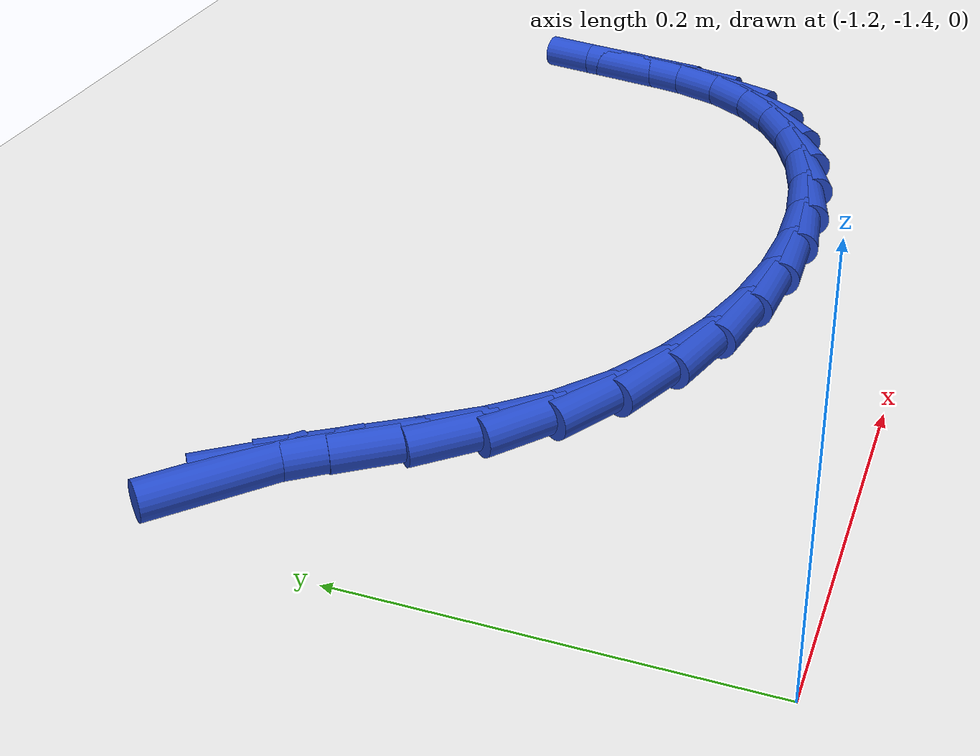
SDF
<sdf version="1.6">
 <world name="default">
  <model name="ground_plane">
   <static>1</static>
   <link name="link">
    <collision name="collision">
     <geometry><plane><normal>0 0 1</normal><size>100 100</size></plane></geometry>
     <surface><friction><ode><mu>100</mu><mu2>50</mu2></ode></friction></surface>
    </collision>
    <visual name="visual">
     <cast_shadows>0</cast_shadows>
     <geometry><plane><normal>0 0 1</normal><size>100 100</size></plane></geometry>
     <material>
      <script><uri>file://media/materials/scripts/gazebo.material</uri><name>Gazebo/WhiteGlow</name></script>
     </material>
    </visual>
   </link>
  </model>
  <model name="line">
   <link name="link_193">
    <pose>-1.158515880646531 -1.1330882934643858 0.01 0 1.57 -0.7611715278274747</pose>
    <collision name="collision">
     <geometry><cylinder><radius>0.01</radius><length>0.08</length></cylinder></geometry>
    </collision>
    <visual name="visual">
     <material>
      <script><name>Gazebo/Blue</name><uri>file://media/materials/scripts/gazebo.material</uri></script>
     </material>
     <geometry><cylinder><radius>0.01</radius><length>0.08</length></cylinder></geometry>
    </visual>
   </link>
   <link name="link_194">
    <pose>-1.1399511498327122 -1.1507746114671973 0.01 0 1.57 -0.9412244863692656</pose>
    <collision name="collision">
     <geometry><cylinder><radius>0.01</radius><length>0.08</length></cylinder></geometry>
    </collision>
    <visual name="visual">
     <material>
      <script><name>Gazebo/Blue</name><uri>file://media/materials/scripts/gazebo.material</uri></script>
     </material>
     <geometry><cylinder><radius>0.01</radius><length>0.08</length></cylinder></geometry>
    </visual>
   </link>
   <link name="link_195">
    <pose>-1.1226643223779653 -1.1745052862638519 0.01 0 1.57 -0.9962460779054159</pose>
    <collision name="collision">
     <geometry><cylinder><radius>0.01</radius><length>0.08</length></cylinder></geometry>
    </collision>
    <visual name="visual">
     <material>
      <script><name>Gazebo/Blue</name><uri>file://media/materials/scripts/gazebo.material</uri></script>
     </material>
     <geometry><cylinder><radius>0.01</radius><length>0.08</length></cylinder></geometry>
    </visual>
   </link>
   <link name="link_196">
    <pose>-1.1051279482170964 -1.201592377980765 0.01 0 1.57 -0.9628693230598371</pose>
    <collision name="collision">
     <geometry><cylinder><radius>0.01</radius><length>0.08</length></cylinder></geometry>
    </collision>
    <visual name="visual">
     <material>
      <script><name>Gazebo/Blue</name><uri>file://media/materials/scripts/gazebo.material</uri></script>
     </material>
     <geometry><cylinder><radius>0.01</radius><length>0.08</length></cylinder></geometry>
    </visual>
   </link>
   <link name="link_197">
    <pose>-1.085814577284912 -1.2293479467443522 0.01 0 1.57 -0.8500607702673014</pose>
    <collision name="collision">
     <geometry><cylinder><radius>0.01</radius><length>0.08</length></cylinder></geometry>
    </collision>
    <visual name="visual">
     <material>
      <script><name>Gazebo/Blue</name><uri>file://media/materials/scripts/gazebo.material</uri></script>
     </material>
     <geometry><cylinder><radius>0.01</radius><length>0.08</length></cylinder></geometry>
    </visual>
   </link>
   <link name="link_198">
    <pose>-1.0632026772668328 -1.2550909671937407 0.01 0 1.57 -0.6869559370645577</pose>
    <collision name="collision">
     <geometry><cylinder><radius>0.01</radius><length>0.08</length></cylinder></geometry>
    </collision>
    <visual name="visual">
     <material>
      <script><name>Gazebo/Blue</name><uri>file://media/materials/scripts/gazebo.material</uri></script>
     </material>
     <geometry><cylinder><radius>0.01</radius><length>0.08</length></cylinder></geometry>
    </visual>
   </link>
   <link name="link_199">
    <pose>-1.0365004037974719 -1.2769930076189306 0.01 0 1.57 -0.5355580777094817</pose>
    <collision name="collision">
     <geometry><cylinder><radius>0.01</radius><length>0.08</length></cylinder></geometry>
    </collision>
    <visual name="visual">
     <material>
      <script><name>Gazebo/Blue</name><uri>file://media/materials/scripts/gazebo.material</uri></script>
     </material>
     <geometry><cylinder><radius>0.01</radius><length>0.08</length></cylinder></geometry>
    </visual>
   </link>
   <link name="link_200">
    <pose>-1.0063404713039577 -1.2948901420525964 0.01 0 1.57 -0.4011525666709362</pose>
    <collision name="collision">
     <geometry><cylinder><radius>0.01</radius><length>0.08</length></cylinder></geometry>
    </collision>
    <visual name="visual">
     <material>
      <script><name>Gazebo/Blue</name><uri>file://media/materials/scripts/gazebo.material</uri></script>
     </material>
     <geometry><cylinder><radius>0.01</radius><length>0.08</length></cylinder></geometry>
    </visual>
   </link>
   <link name="link_201">
    <pose>-0.9735203039102714 -1.3088108972627635 0.01 0 1.57 -0.2799910082260925</pose>
    <collision name="collision">
     <geometry><cylinder><radius>0.01</radius><length>0.08</length></cylinder></geometry>
    </collision>
    <visual name="visual">
     <material>
      <script><name>Gazebo/Blue</name><uri>file://media/materials/scripts/gazebo.material</uri></script>
     </material>
     <geometry><cylinder><radius>0.01</radius><length>0.08</length></cylinder></geometry>
    </visual>
   </link>
   <link name="link_202">
    <pose>-0.9388373257403956 -1.318783800017456 0.01 0 1.57 -0.16774723779034795</pose>
    <collision name="collision">
     <geometry><cylinder><radius>0.01</radius><length>0.08</length></cylinder></geometry>
    </collision>
    <visual name="visual">
     <material>
      <script><name>Gazebo/Blue</name><uri>file://media/materials/scripts/gazebo.material</uri></script>
     </material>
     <geometry><cylinder><radius>0.01</radius><length>0.08</length></cylinder></geometry>
    </visual>
   </link>
   <link name="link_203">
    <pose>-0.9030889609183131 -1.3248373770847015 0.01 0 1.57 -0.059977911722860495</pose>
    <collision name="collision">
     <geometry><cylinder><radius>0.01</radius><length>0.08</length></cylinder></geometry>
    </collision>
    <visual name="visual">
     <material>
      <script><name>Gazebo/Blue</name><uri>file://media/materials/scripts/gazebo.material</uri></script>
     </material>
     <geometry><cylinder><radius>0.01</radius><length>0.08</length></cylinder></geometry>
    </visual>
   </link>
   <link name="link_204">
    <pose>-0.8670726335680047 -1.327000155232524 0.01 0 1.57 0.04785422644842551</pose>
    <collision name="collision">
     <geometry><cylinder><radius>0.01</radius><length>0.08</length></cylinder></geometry>
    </collision>
    <visual name="visual">
     <material>
      <script><name>Gazebo/Blue</name><uri>file://media/materials/scripts/gazebo.material</uri></script>
     </material>
     <geometry><cylinder><radius>0.01</radius><length>0.08</length></cylinder></geometry>
    </visual>
   </link>
   <link name="link_205">
    <pose>-0.8315857678134548 -1.3253006612289495 0.01 0 1.57 0.16058540690158352</pose>
    <collision name="collision">
     <geometry><cylinder><radius>0.01</radius><length>0.08</length></cylinder></geometry>
    </collision>
    <visual name="visual">
     <material>
      <script><name>Gazebo/Blue</name><uri>file://media/materials/scripts/gazebo.material</uri></script>
     </material>
     <geometry><cylinder><radius>0.01</radius><length>0.08</length></cylinder></geometry>
    </visual>
   </link>
   <link name="link_206">
    <pose>-0.7974257877786451 -1.3197674218420035 0.01 0 1.57 0.28364223263128585</pose>
    <collision name="collision">
     <geometry><cylinder><radius>0.01</radius><length>0.08</length></cylinder></geometry>
    </collision>
    <visual name="visual">
     <material>
      <script><name>Gazebo/Blue</name><uri>file://media/materials/scripts/gazebo.material</uri></script>
     </material>
     <geometry><cylinder><radius>0.01</radius><length>0.08</length></cylinder></geometry>
    </visual>
   </link>
   <link name="link_207">
    <pose>-0.7653901175875573 -1.3104289638397109 0.01 0 1.57 0.4232502776865864</pose>
    <collision name="collision">
     <geometry><cylinder><radius>0.01</radius><length>0.08</length></cylinder></geometry>
    </collision>
    <visual name="visual">
     <material>
      <script><name>Gazebo/Blue</name><uri>file://media/materials/scripts/gazebo.material</uri></script>
     </material>
     <geometry><cylinder><radius>0.01</radius><length>0.08</length></cylinder></geometry>
    </visual>
   </link>
   <link name="link_208">
    <pose>-0.736276181364174 -1.2973138139900982 0.01 0 1.57 0.5861864857601594</pose>
    <collision name="collision">
     <geometry><cylinder><radius>0.01</radius><length>0.08</length></cylinder></geometry>
    </collision>
    <visual name="visual">
     <material>
      <script><name>Gazebo/Blue</name><uri>file://media/materials/scripts/gazebo.material</uri></script>
     </material>
     <geometry><cylinder><radius>0.01</radius><length>0.08</length></cylinder></geometry>
    </visual>
   </link>
   <link name="link_209">
    <pose>-0.7108814032324778 -1.2804504990611905 0.01 0 1.57 0.778277336029386</pose>
    <collision name="collision">
     <geometry><cylinder><radius>0.01</radius><length>0.08</length></cylinder></geometry>
    </collision>
    <visual name="visual">
     <material>
      <script><name>Gazebo/Blue</name><uri>file://media/materials/scripts/gazebo.material</uri></script>
     </material>
     <geometry><cylinder><radius>0.01</radius><length>0.08</length></cylinder></geometry>
    </visual>
   </link>
   <link name="link_210">
    <pose>-0.6900032073164505 -1.2598675458210125 0.01 0 1.57 1.0004205211651758</pose>
    <collision name="collision">
     <geometry><cylinder><radius>0.01</radius><length>0.08</length></cylinder></geometry>
    </collision>
    <visual name="visual">
     <material>
      <script><name>Gazebo/Blue</name><uri>file://media/materials/scripts/gazebo.material</uri></script>
     </material>
     <geometry><cylinder><radius>0.01</radius><length>0.08</length></cylinder></geometry>
    </visual>
   </link>
   <link name="link_211">
    <pose>-0.6744331073925814 -1.235596108447626 0.01 0 1.57 1.2129333938213067</pose>
    <collision name="collision">
     <geometry><cylinder><radius>0.01</radius><length>0.08</length></cylinder></geometry>
    </collision>
    <visual name="visual">
     <material>
      <script><name>Gazebo/Blue</name><uri>file://media/materials/scripts/gazebo.material</uri></script>
     </material>
     <geometry><cylinder><radius>0.01</radius><length>0.08</length></cylinder></geometry>
    </visual>
   </link>
   <link name="link_212">
    <pose>-0.6641275515130481 -1.2080385646496916 0.01 0 1.57 1.3464360650024434</pose>
    <collision name="collision">
     <geometry><cylinder><radius>0.01</radius><length>0.08</length></cylinder></geometry>
    </collision>
    <visual name="visual">
     <material>
      <script><name>Gazebo/Blue</name><uri>file://media/materials/scripts/gazebo.material</uri></script>
     </material>
     <geometry><cylinder><radius>0.01</radius><length>0.08</length></cylinder></geometry>
    </visual>
   </link>
   <link name="link_213">
    <pose>-0.6573522991014901 -1.1783488777698696 0.01 0 1.57 1.4028733212254816</pose>
    <collision name="collision">
     <geometry><cylinder><radius>0.01</radius><length>0.08</length></cylinder></geometry>
    </collision>
    <visual name="visual">
     <material>
      <script><name>Gazebo/Blue</name><uri>file://media/materials/scripts/gazebo.material</uri></script>
     </material>
     <geometry><cylinder><radius>0.01</radius><length>0.08</length></cylinder></geometry>
    </visual>
   </link>
   <link name="link_214">
    <pose>-0.6521688908713981 -1.1477717953710185 0.01 0 1.57 1.3898050631459173</pose>
    <collision name="collision">
     <geometry><cylinder><radius>0.01</radius><length>0.08</length></cylinder></geometry>
    </collision>
    <visual name="visual">
     <material>
      <script><name>Gazebo/Blue</name><uri>file://media/materials/scripts/gazebo.material</uri></script>
     </material>
     <geometry><cylinder><radius>0.01</radius><length>0.08</length></cylinder></geometry>
    </visual>
   </link>
  </model>
 </world>
</sdf>
